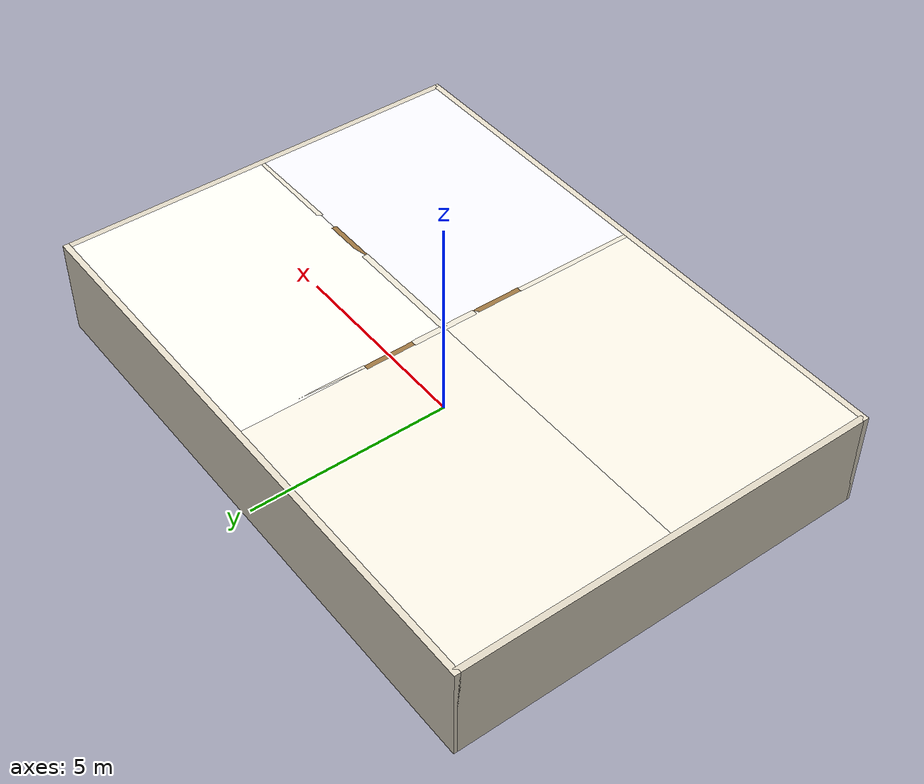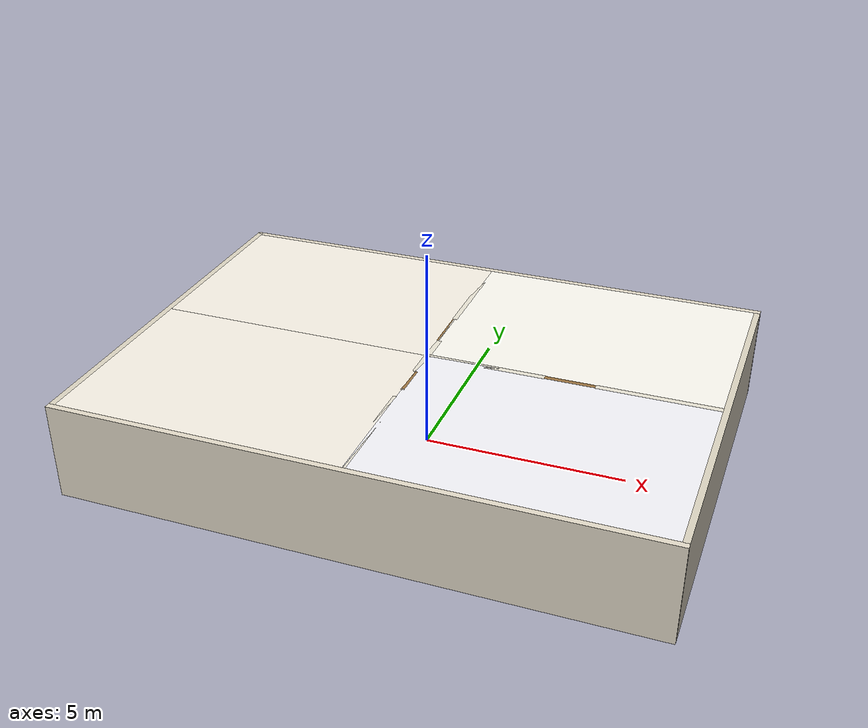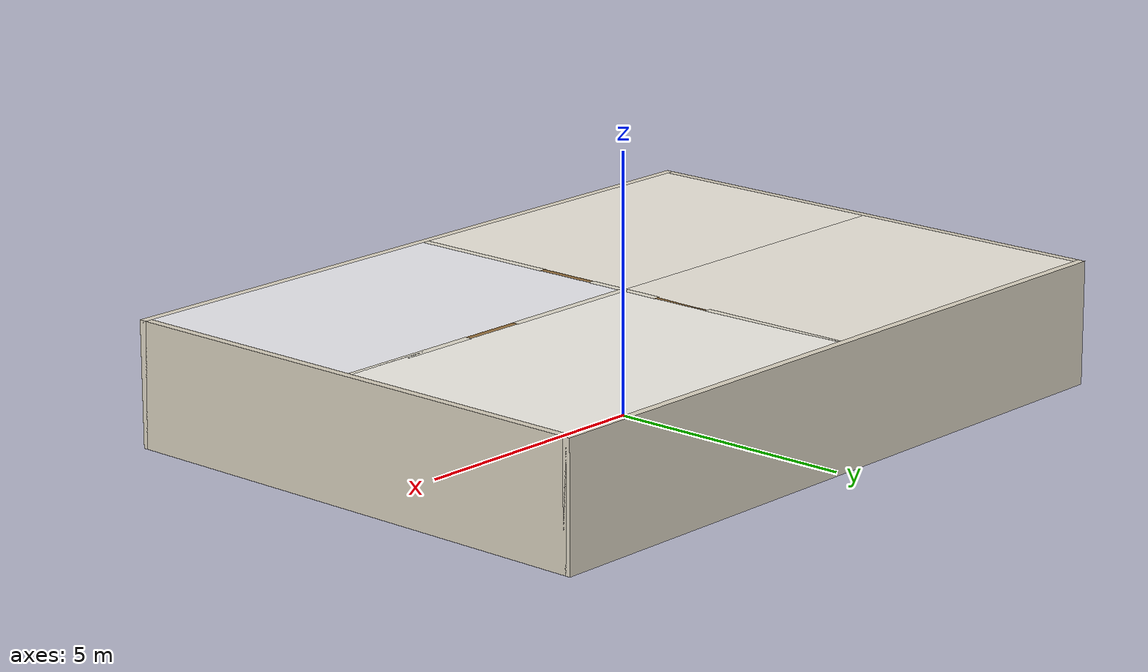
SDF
<?xml version="1.0" ?>
<sdf version="1.7">
  <world name="small_house">

    <!-- World plugins                                                      -->
    <plugin filename="libignition-gazebo-physics-system.so"
            name="ignition::gazebo::systems::Physics"/>
    <plugin filename="libignition-gazebo-user-commands-system.so"
            name="ignition::gazebo::systems::UserCommands"/>
    <plugin filename="libignition-gazebo-scene-broadcaster-system.so"
            name="ignition::gazebo::systems::SceneBroadcaster"/>
    <!-- Sensors plugin is required for camera rendering -->
    <plugin filename="libignition-gazebo-sensors-system.so"
            name="ignition::gazebo::systems::Sensors">
      <render_engine>ogre2</render_engine>
    </plugin>

    <!-- Physics                                                            -->
    <physics name="default_physics" default="0" type="ode">
      <max_step_size>0.004</max_step_size>
      <real_time_factor>1.0</real_time_factor>
      <real_time_update_rate>250</real_time_update_rate>
    </physics>

    <!-- Lighting                                                           -->

    <!-- Gentle global fill — no harsh shadows from above -->
    <light name="ambient_sun" type="directional">
      <cast_shadows>false</cast_shadows>
      <pose>0 0 10 0 0 0</pose>
      <diffuse>0.45 0.45 0.5 1</diffuse>
      <specular>0.1 0.1 0.1 1</specular>
      <direction>-0.3 0.1 -0.9</direction>
    </light>

    <!-- Living room ceiling light -->
    <light name="light_living" type="point">
      <pose>-3.5 2.5 2.2 0 0 0</pose>
      <diffuse>0.9 0.85 0.75 1</diffuse>
      <specular>0.3 0.3 0.2 1</specular>
      <attenuation>
        <range>12</range><constant>0.4</constant>
        <linear>0.08</linear><quadratic>0.03</quadratic>
      </attenuation>
      <cast_shadows>true</cast_shadows>
    </light>

    <!-- Bedroom ceiling light -->
    <light name="light_bedroom" type="point">
      <pose>-3.5 -2.5 2.2 0 0 0</pose>
      <diffuse>0.85 0.82 0.78 1</diffuse>
      <specular>0.2 0.2 0.2 1</specular>
      <attenuation>
        <range>12</range><constant>0.4</constant>
        <linear>0.08</linear><quadratic>0.03</quadratic>
      </attenuation>
      <cast_shadows>true</cast_shadows>
    </light>

    <!-- Kitchen ceiling light (warm white) -->
    <light name="light_kitchen" type="point">
      <pose>3.5 2.5 2.2 0 0 0</pose>
      <diffuse>1.0 0.95 0.85 1</diffuse>
      <specular>0.4 0.35 0.25 1</specular>
      <attenuation>
        <range>12</range><constant>0.35</constant>
        <linear>0.07</linear><quadratic>0.025</quadratic>
      </attenuation>
      <cast_shadows>true</cast_shadows>
    </light>

    <!-- Study ceiling light (cool white) -->
    <light name="light_study" type="point">
      <pose>3.5 -2.5 2.2 0 0 0</pose>
      <diffuse>0.85 0.88 1.0 1</diffuse>
      <specular>0.25 0.25 0.35 1</specular>
      <attenuation>
        <range>12</range><constant>0.4</constant>
        <linear>0.08</linear><quadratic>0.03</quadratic>
      </attenuation>
      <cast_shadows>true</cast_shadows>
    </light>

    <!-- Center hallway / doorway fill light -->
    <light name="light_hall" type="point">
      <pose>0 0 2.2 0 0 0</pose>
      <diffuse>0.7 0.7 0.7 1</diffuse>
      <specular>0.1 0.1 0.1 1</specular>
      <attenuation>
        <range>6</range><constant>0.5</constant>
        <linear>0.12</linear><quadratic>0.05</quadratic>
      </attenuation>
      <cast_shadows>false</cast_shadows>
    </light>

    <!-- FLOOR                                                              -->

    <!-- Living room floor — warm oak colour -->
    <model name="floor_living">
      <static>true</static>
      <pose>-3.5 2.5 0 0 0 0</pose>
      <link name="link">
        <collision name="col">
          <geometry><box><size>7.0 5.0 0.02</size></box></geometry>
          <surface><friction><ode><mu>0.8</mu><mu2>0.8</mu2></ode></friction></surface>
        </collision>
        <visual name="vis">
          <geometry><box><size>7.0 5.0 0.02</size></box></geometry>
          <material>
            <ambient>0.72 0.52 0.25 1</ambient>
            <diffuse>0.72 0.52 0.25 1</diffuse>
            <specular>0.15 0.1 0.05 1</specular>
          </material>
        </visual>
      </link>
    </model>

    <!-- Bedroom floor — darker hardwood -->
    <model name="floor_bedroom">
      <static>true</static>
      <pose>-3.5 -2.5 0 0 0 0</pose>
      <link name="link">
        <collision name="col">
          <geometry><box><size>7.0 5.0 0.02</size></box></geometry>
          <surface><friction><ode><mu>0.8</mu><mu2>0.8</mu2></ode></friction></surface>
        </collision>
        <visual name="vis">
          <geometry><box><size>7.0 5.0 0.02</size></box></geometry>
          <material>
            <ambient>0.52 0.32 0.12 1</ambient>
            <diffuse>0.52 0.32 0.12 1</diffuse>
            <specular>0.12 0.07 0.03 1</specular>
          </material>
        </visual>
      </link>
    </model>

    <!-- Kitchen floor — grey ceramic tile -->
    <model name="floor_kitchen">
      <static>true</static>
      <pose>3.5 2.5 0 0 0 0</pose>
      <link name="link">
        <collision name="col">
          <geometry><box><size>7.0 5.0 0.02</size></box></geometry>
          <surface><friction><ode><mu>0.9</mu><mu2>0.9</mu2></ode></friction></surface>
        </collision>
        <visual name="vis">
          <geometry><box><size>7.0 5.0 0.02</size></box></geometry>
          <material>
            <ambient>0.75 0.75 0.75 1</ambient>
            <diffuse>0.75 0.75 0.75 1</diffuse>
            <specular>0.4 0.4 0.4 1</specular>
          </material>
        </visual>
      </link>
    </model>

    <!-- Study floor — carpet, muted green -->
    <model name="floor_study">
      <static>true</static>
      <pose>3.5 -2.5 0 0 0 0</pose>
      <link name="link">
        <collision name="col">
          <geometry><box><size>7.0 5.0 0.02</size></box></geometry>
          <surface><friction><ode><mu>0.9</mu><mu2>0.9</mu2></ode></friction></surface>
        </collision>
        <visual name="vis">
          <geometry><box><size>7.0 5.0 0.02</size></box></geometry>
          <material>
            <ambient>0.35 0.45 0.32 1</ambient>
            <diffuse>0.35 0.45 0.32 1</diffuse>
            <specular>0.05 0.07 0.04 1</specular>
          </material>
        </visual>
      </link>
    </model>

    <!-- CEILINGS (create visual features for angled camera views)         -->

    <model name="ceiling_living">
      <static>true</static>
      <pose>-3.5 2.5 2.38 0 0 0</pose>
      <link name="link">
        <visual name="vis">
          <geometry><box><size>7.0 5.0 0.04</size></box></geometry>
          <material>
            <ambient>0.95 0.93 0.88 1</ambient>
            <diffuse>0.95 0.93 0.88 1</diffuse>
          </material>
        </visual>
      </link>
    </model>

    <model name="ceiling_bedroom">
      <static>true</static>
      <pose>-3.5 -2.5 2.38 0 0 0</pose>
      <link name="link">
        <visual name="vis">
          <geometry><box><size>7.0 5.0 0.04</size></box></geometry>
          <material>
            <ambient>0.95 0.93 0.88 1</ambient>
            <diffuse>0.95 0.93 0.88 1</diffuse>
          </material>
        </visual>
      </link>
    </model>

    <model name="ceiling_kitchen">
      <static>true</static>
      <pose>3.5 2.5 2.38 0 0 0</pose>
      <link name="link">
        <visual name="vis">
          <geometry><box><size>7.0 5.0 0.04</size></box></geometry>
          <material>
            <ambient>0.97 0.96 0.93 1</ambient>
            <diffuse>0.97 0.96 0.93 1</diffuse>
          </material>
        </visual>
      </link>
    </model>

    <model name="ceiling_study">
      <static>true</static>
      <pose>3.5 -2.5 2.38 0 0 0</pose>
      <link name="link">
        <visual name="vis">
          <geometry><box><size>7.0 5.0 0.04</size></box></geometry>
          <material>
            <ambient>0.94 0.94 0.96 1</ambient>
            <diffuse>0.94 0.94 0.96 1</diffuse>
          </material>
        </visual>
      </link>
    </model>

    <!-- PERIMETER WALLS                                                    -->
    <!-- All walls: height 2.4 m, thickness 0.15 m.                        -->
    <!-- Poses are at wall centre (z=1.2).                                 -->

    <!-- Outer north wall (y=+5): 14.3 m long to cover full width + corners -->
    <model name="wall_outer_north">
      <static>true</static>
      <pose>0 5.075 1.2 0 0 0</pose>
      <link name="link">
        <collision name="col">
          <geometry><box><size>14.3 0.15 2.4</size></box></geometry>
        </collision>
        <visual name="vis">
          <geometry><box><size>14.3 0.15 2.4</size></box></geometry>
          <material>
            <ambient>0.88 0.85 0.78 1</ambient>
            <diffuse>0.88 0.85 0.78 1</diffuse>
            <specular>0.08 0.08 0.06 1</specular>
          </material>
        </visual>
      </link>
    </model>

    <!-- Outer south wall (y=-5) -->
    <model name="wall_outer_south">
      <static>true</static>
      <pose>0 -5.075 1.2 0 0 0</pose>
      <link name="link">
        <collision name="col">
          <geometry><box><size>14.3 0.15 2.4</size></box></geometry>
        </collision>
        <visual name="vis">
          <geometry><box><size>14.3 0.15 2.4</size></box></geometry>
          <material>
            <ambient>0.88 0.85 0.78 1</ambient>
            <diffuse>0.88 0.85 0.78 1</diffuse>
            <specular>0.08 0.08 0.06 1</specular>
          </material>
        </visual>
      </link>
    </model>

    <!-- Outer west wall (x=-7): 10.15 m long (excludes corner overlaps) -->
    <model name="wall_outer_west">
      <static>true</static>
      <pose>-7.075 0 1.2 0 0 0</pose>
      <link name="link">
        <collision name="col">
          <geometry><box><size>0.15 10.15 2.4</size></box></geometry>
        </collision>
        <visual name="vis">
          <geometry><box><size>0.15 10.15 2.4</size></box></geometry>
          <material>
            <ambient>0.85 0.82 0.75 1</ambient>
            <diffuse>0.85 0.82 0.75 1</diffuse>
            <specular>0.07 0.07 0.05 1</specular>
          </material>
        </visual>
      </link>
    </model>

    <!-- Outer east wall (x=+7) -->
    <model name="wall_outer_east">
      <static>true</static>
      <pose>7.075 0 1.2 0 0 0</pose>
      <link name="link">
        <collision name="col">
          <geometry><box><size>0.15 10.15 2.4</size></box></geometry>
        </collision>
        <visual name="vis">
          <geometry><box><size>0.15 10.15 2.4</size></box></geometry>
          <material>
            <ambient>0.85 0.82 0.75 1</ambient>
            <diffuse>0.85 0.82 0.75 1</diffuse>
            <specular>0.07 0.07 0.05 1</specular>
          </material>
        </visual>
      </link>
    </model>

    <!-- INTERIOR DIVIDING WALL — vertical at x=0                          -->
    <!-- Two doorways of 1.2 m:                                            -->
    <!--   North door: y = 0.8 to 2.0  (centre y=1.4)                     -->
    <!--   South door: y = -2.0 to -0.8 (centre y=-1.4)                   -->
    <!-- Three wall segments remain:                                        -->
    <!--   North: y=2.0 → 5.0   length=3.0   centre=(0, 3.5)              -->
    <!--   Mid  : y=-0.8 → 0.8  length=1.6   centre=(0, 0.0)              -->
    <!--   South: y=-5.0 → -2.0 length=3.0   centre=(0, -3.5)             -->

    <!-- Divider north segment (living ↔ kitchen, above north door) -->
    <model name="wall_div_north">
      <static>true</static>
      <pose>0 3.5 1.2 0 0 0</pose>
      <link name="link">
        <collision name="col">
          <geometry><box><size>0.15 3.0 2.4</size></box></geometry>
        </collision>
        <visual name="vis">
          <geometry><box><size>0.15 3.0 2.4</size></box></geometry>
          <material>
            <ambient>0.90 0.88 0.82 1</ambient>
            <diffuse>0.90 0.88 0.82 1</diffuse>
            <specular>0.07 0.07 0.05 1</specular>
          </material>
        </visual>
      </link>
    </model>

    <!-- Divider middle segment (between north and south doors) -->
    <model name="wall_div_mid">
      <static>true</static>
      <pose>0 0 1.2 0 0 0</pose>
      <link name="link">
        <collision name="col">
          <geometry><box><size>0.15 1.6 2.4</size></box></geometry>
        </collision>
        <visual name="vis">
          <geometry><box><size>0.15 1.6 2.4</size></box></geometry>
          <material>
            <ambient>0.90 0.88 0.82 1</ambient>
            <diffuse>0.90 0.88 0.82 1</diffuse>
            <specular>0.07 0.07 0.05 1</specular>
          </material>
        </visual>
      </link>
    </model>

    <!-- Divider south segment (bedroom ↔ study, below south door) -->
    <model name="wall_div_south">
      <static>true</static>
      <pose>0 -3.5 1.2 0 0 0</pose>
      <link name="link">
        <collision name="col">
          <geometry><box><size>0.15 3.0 2.4</size></box></geometry>
        </collision>
        <visual name="vis">
          <geometry><box><size>0.15 3.0 2.4</size></box></geometry>
          <material>
            <ambient>0.90 0.88 0.82 1</ambient>
            <diffuse>0.90 0.88 0.82 1</diffuse>
            <specular>0.07 0.07 0.05 1</specular>
          </material>
        </visual>
      </link>
    </model>

    <!-- Door frame trim — north door (visual only, thin box around opening) -->
    <model name="door_trim_N_top">
      <static>true</static>
      <pose>0 1.4 2.35 0 0 0</pose>
      <link name="link">
        <visual name="vis">
          <geometry><box><size>0.12 1.2 0.1</size></box></geometry>
          <material><ambient>0.6 0.45 0.25 1</ambient><diffuse>0.6 0.45 0.25 1</diffuse></material>
        </visual>
      </link>
    </model>

    <!-- Door frame trim — south door -->
    <model name="door_trim_S_top">
      <static>true</static>
      <pose>0 -1.4 2.35 0 0 0</pose>
      <link name="link">
        <visual name="vis">
          <geometry><box><size>0.12 1.2 0.1</size></box></geometry>
          <material><ambient>0.6 0.45 0.25 1</ambient><diffuse>0.6 0.45 0.25 1</diffuse></material>
        </visual>
      </link>
    </model>

    <!-- MID-WALL in right section — horizontal at y=0, x=0→7             -->
    <!-- Doorway: x=2.9 → 4.1  (1.2 m wide, centre x=3.5)                -->
    <!-- Two segments:                                                      -->
    <!--   West: x=0 → 2.9  length=2.9  centre x=1.45                    -->
    <!--   East: x=4.1 → 7  length=2.9  centre x=5.55                    -->

    <model name="wall_mid_west">
      <static>true</static>
      <pose>1.45 0 1.2 0 0 0</pose>
      <link name="link">
        <collision name="col">
          <geometry><box><size>2.9 0.15 2.4</size></box></geometry>
        </collision>
        <visual name="vis">
          <geometry><box><size>2.9 0.15 2.4</size></box></geometry>
          <material>
            <ambient>0.90 0.88 0.82 1</ambient>
            <diffuse>0.90 0.88 0.82 1</diffuse>
            <specular>0.07 0.07 0.05 1</specular>
          </material>
        </visual>
      </link>
    </model>

    <model name="wall_mid_east">
      <static>true</static>
      <pose>5.55 0 1.2 0 0 0</pose>
      <link name="link">
        <collision name="col">
          <geometry><box><size>2.9 0.15 2.4</size></box></geometry>
        </collision>
        <visual name="vis">
          <geometry><box><size>2.9 0.15 2.4</size></box></geometry>
          <material>
            <ambient>0.90 0.88 0.82 1</ambient>
            <diffuse>0.90 0.88 0.82 1</diffuse>
            <specular>0.07 0.07 0.05 1</specular>
          </material>
        </visual>
      </link>
    </model>

    <!-- Door frame trim — kitchen/study passage -->
    <model name="door_trim_KS_top">
      <static>true</static>
      <pose>3.5 0 2.35 0 0 0</pose>
      <link name="link">
        <visual name="vis">
          <geometry><box><size>1.2 0.12 0.1</size></box></geometry>
          <material><ambient>0.6 0.45 0.25 1</ambient><diffuse>0.6 0.45 0.25 1</diffuse></material>
        </visual>
      </link>
    </model>

    <!-- LIVING ROOM FURNISHINGS  (x:-7→0, y:0→5)                         -->

    <!-- Large sofa against north wall — deep teal -->
    <model name="sofa">
      <static>true</static>
      <pose>-5 4.4 0.45 0 0 0</pose>
      <link name="link">
        <collision name="col"><geometry><box><size>2.4 0.8 0.85</size></box></geometry></collision>
        <visual name="vis">
          <geometry><box><size>2.4 0.8 0.85</size></box></geometry>
          <material>
            <ambient>0.12 0.38 0.42 1</ambient>
            <diffuse>0.12 0.38 0.42 1</diffuse>
            <specular>0.05 0.12 0.14 1</specular>
          </material>
        </visual>
      </link>
    </model>

    <!-- Sofa armrest left -->
    <model name="sofa_arm_l">
      <static>true</static>
      <pose>-6.3 4.35 0.55 0 0 0</pose>
      <link name="link">
        <collision name="col"><geometry><box><size>0.15 0.7 1.0</size></box></geometry></collision>
        <visual name="vis">
          <geometry><box><size>0.15 0.7 1.0</size></box></geometry>
          <material><ambient>0.10 0.32 0.36 1</ambient><diffuse>0.10 0.32 0.36 1</diffuse></material>
        </visual>
      </link>
    </model>

    <!-- Sofa armrest right -->
    <model name="sofa_arm_r">
      <static>true</static>
      <pose>-3.75 4.35 0.55 0 0 0</pose>
      <link name="link">
        <collision name="col"><geometry><box><size>0.15 0.7 1.0</size></box></geometry></collision>
        <visual name="vis">
          <geometry><box><size>0.15 0.7 1.0</size></box></geometry>
          <material><ambient>0.10 0.32 0.36 1</ambient><diffuse>0.10 0.32 0.36 1</diffuse></material>
        </visual>
      </link>
    </model>

    <!-- Coffee table in front of sofa — glass-top (light grey) -->
    <model name="coffee_table">
      <static>true</static>
      <pose>-5 3.2 0.22 0 0 0</pose>
      <link name="link">
        <collision name="col"><geometry><box><size>1.2 0.6 0.45</size></box></geometry></collision>
        <visual name="vis">
          <geometry><box><size>1.2 0.6 0.45</size></box></geometry>
          <material>
            <ambient>0.70 0.70 0.72 1</ambient>
            <diffuse>0.70 0.70 0.72 1</diffuse>
            <specular>0.6 0.6 0.65 1</specular>
          </material>
        </visual>
      </link>
    </model>

    <!-- TV unit against west wall — dark grey cabinet -->
    <model name="tv_cabinet">
      <static>true</static>
      <pose>-6.6 1.5 0.25 0 0 0</pose>
      <link name="link">
        <collision name="col"><geometry><box><size>0.45 1.6 0.5</size></box></geometry></collision>
        <visual name="vis">
          <geometry><box><size>0.45 1.6 0.5</size></box></geometry>
          <material>
            <ambient>0.18 0.16 0.16 1</ambient>
            <diffuse>0.18 0.16 0.16 1</diffuse>
            <specular>0.25 0.22 0.22 1</specular>
          </material>
        </visual>
      </link>
    </model>

    <!-- TV (flat panel) mounted on cabinet — black screen -->
    <model name="tv_screen">
      <static>true</static>
      <pose>-6.4 1.5 0.85 0 0 0</pose>
      <link name="link">
        <collision name="col"><geometry><box><size>0.08 1.4 0.8</size></box></geometry></collision>
        <visual name="vis">
          <geometry><box><size>0.08 1.4 0.8</size></box></geometry>
          <material>
            <ambient>0.05 0.05 0.08 1</ambient>
            <diffuse>0.05 0.05 0.08 1</diffuse>
            <specular>0.6 0.6 0.8 1</specular>
          </material>
        </visual>
      </link>
    </model>

    <!-- Bookshelf against west wall — tall dark wood -->
    <model name="bookshelf_living">
      <static>true</static>
      <pose>-6.6 3.5 0.95 0 0 0</pose>
      <link name="link">
        <collision name="col"><geometry><box><size>0.4 1.2 1.9</size></box></geometry></collision>
        <visual name="vis">
          <geometry><box><size>0.4 1.2 1.9</size></box></geometry>
          <material>
            <ambient>0.32 0.18 0.06 1</ambient>
            <diffuse>0.32 0.18 0.06 1</diffuse>
            <specular>0.15 0.08 0.03 1</specular>
          </material>
        </visual>
      </link>
    </model>

    <!-- Books on shelf — colourful spines (thin slabs) -->
    <model name="books_row1">
      <static>true</static>
      <pose>-6.42 3.55 0.4 0 0 0</pose>
      <link name="link">
        <visual name="vis">
          <geometry><box><size>0.06 0.9 0.22</size></box></geometry>
          <material><ambient>0.85 0.15 0.1 1</ambient><diffuse>0.85 0.15 0.1 1</diffuse></material>
        </visual>
      </link>
    </model>
    <model name="books_row2">
      <static>true</static>
      <pose>-6.42 3.3 0.75 0 0 0</pose>
      <link name="link">
        <visual name="vis">
          <geometry><box><size>0.06 0.55 0.20</size></box></geometry>
          <material><ambient>0.1 0.35 0.75 1</ambient><diffuse>0.1 0.35 0.75 1</diffuse></material>
        </visual>
      </link>
    </model>
    <model name="books_row3">
      <static>true</static>
      <pose>-6.42 3.6 1.1 0 0 0</pose>
      <link name="link">
        <visual name="vis">
          <geometry><box><size>0.06 0.7 0.19</size></box></geometry>
          <material><ambient>0.15 0.6 0.2 1</ambient><diffuse>0.15 0.6 0.2 1</diffuse></material>
        </visual>
      </link>
    </model>

    <!-- Living room area rug — rich burgundy -->
    <model name="rug_living">
      <static>true</static>
      <pose>-4.5 2.5 0.015 0 0 0</pose>
      <link name="link">
        <visual name="vis">
          <geometry><box><size>3.0 2.2 0.03</size></box></geometry>
          <material>
            <ambient>0.52 0.08 0.12 1</ambient>
            <diffuse>0.52 0.08 0.12 1</diffuse>
            <specular>0.05 0.01 0.01 1</specular>
          </material>
        </visual>
      </link>
    </model>

    <!-- Rug pattern — lighter border strip around burgundy rug -->
    <model name="rug_border">
      <static>true</static>
      <pose>-4.5 2.5 0.018 0 0 0</pose>
      <link name="link">
        <visual name="vis">
          <geometry><box><size>2.7 1.9 0.005</size></box></geometry>
          <material>
            <ambient>0.75 0.55 0.28 1</ambient>
            <diffuse>0.75 0.55 0.28 1</diffuse>
          </material>
        </visual>
      </link>
    </model>

    <!-- Side lamp next to sofa — floor lamp: pole + shade -->
    <model name="floor_lamp_living">
      <static>true</static>
      <pose>-3.6 4.1 0.85 0 0 0</pose>
      <link name="link">
        <collision name="col"><geometry><cylinder><radius>0.04</radius><length>1.7</length></cylinder></geometry></collision>
        <visual name="vis">
          <geometry><cylinder><radius>0.04</radius><length>1.7</length></cylinder></geometry>
          <material><ambient>0.7 0.65 0.55 1</ambient><diffuse>0.7 0.65 0.55 1</diffuse></material>
        </visual>
      </link>
    </model>
    <model name="lamp_shade_living">
      <static>true</static>
      <pose>-3.6 4.1 1.77 0 0 0</pose>
      <link name="link">
        <visual name="vis">
          <geometry><cylinder><radius>0.18</radius><length>0.25</length></cylinder></geometry>
          <material><ambient>0.95 0.90 0.72 1</ambient><diffuse>0.95 0.90 0.72 1</diffuse></material>
        </visual>
      </link>
    </model>

    <!-- Decorative plant corner — cylinder trunk + sphere leaves -->
    <model name="plant_pot_living">
      <static>true</static>
      <pose>-1.3 4.3 0.15 0 0 0</pose>
      <link name="link">
        <collision name="col"><geometry><cylinder><radius>0.15</radius><length>0.30</length></cylinder></geometry></collision>
        <visual name="vis">
          <geometry><cylinder><radius>0.15</radius><length>0.30</length></cylinder></geometry>
          <material><ambient>0.6 0.35 0.15 1</ambient><diffuse>0.6 0.35 0.15 1</diffuse></material>
        </visual>
      </link>
    </model>
    <model name="plant_foliage_living">
      <static>true</static>
      <pose>-1.3 4.3 0.65 0 0 0</pose>
      <link name="link">
        <collision name="col"><geometry><sphere><radius>0.28</radius></sphere></geometry></collision>
        <visual name="vis">
          <geometry><sphere><radius>0.28</radius></sphere></geometry>
          <material><ambient>0.15 0.52 0.12 1</ambient><diffuse>0.15 0.52 0.12 1</diffuse></material>
        </visual>
      </link>
    </model>

    <!-- ── Wall art on north (living room north wall at y=5) ── -->
    <!-- Picture frame 1: large landscape -->
    <model name="art_living_1">
      <static>true</static>
      <pose>-5.5 4.93 1.5 0 0 0</pose>
      <link name="link">
        <visual name="vis">
          <geometry><box><size>0.7 0.06 0.5</size></box></geometry>
          <material><ambient>0.15 0.25 0.62 1</ambient><diffuse>0.15 0.25 0.62 1</diffuse></material>
        </visual>
      </link>
    </model>
    <!-- Frame border -->
    <model name="art_living_1_frame">
      <static>true</static>
      <pose>-5.5 4.90 1.5 0 0 0</pose>
      <link name="link">
        <visual name="vis">
          <geometry><box><size>0.76 0.04 0.56</size></box></geometry>
          <material><ambient>0.62 0.48 0.18 1</ambient><diffuse>0.62 0.48 0.18 1</diffuse></material>
        </visual>
      </link>
    </model>

    <!-- Picture frame 2: portrait -->
    <model name="art_living_2">
      <static>true</static>
      <pose>-3.5 4.93 1.5 0 0 0</pose>
      <link name="link">
        <visual name="vis">
          <geometry><box><size>0.38 0.06 0.5</size></box></geometry>
          <material><ambient>0.72 0.22 0.12 1</ambient><diffuse>0.72 0.22 0.12 1</diffuse></material>
        </visual>
      </link>
    </model>
    <model name="art_living_2_frame">
      <static>true</static>
      <pose>-3.5 4.90 1.5 0 0 0</pose>
      <link name="link">
        <visual name="vis">
          <geometry><box><size>0.44 0.04 0.56</size></box></geometry>
          <material><ambient>0.62 0.48 0.18 1</ambient><diffuse>0.62 0.48 0.18 1</diffuse></material>
        </visual>
      </link>
    </model>

    <!-- Picture frame 3: small square -->
    <model name="art_living_3">
      <static>true</static>
      <pose>-1.8 4.93 1.65 0 0 0</pose>
      <link name="link">
        <visual name="vis">
          <geometry><box><size>0.32 0.06 0.32</size></box></geometry>
          <material><ambient>0.12 0.58 0.35 1</ambient><diffuse>0.12 0.58 0.35 1</diffuse></material>
        </visual>
      </link>
    </model>
    <model name="art_living_3_frame">
      <static>true</static>
      <pose>-1.8 4.90 1.65 0 0 0</pose>
      <link name="link">
        <visual name="vis">
          <geometry><box><size>0.38 0.04 0.38</size></box></geometry>
          <material><ambient>0.5 0.5 0.5 1</ambient><diffuse>0.5 0.5 0.5 1</diffuse></material>
        </visual>
      </link>
    </model>

    <!-- Wall art on west wall (x=-7) of living room -->
    <model name="art_west_1">
      <static>true</static>
      <pose>-6.93 2.5 1.5 0 0 0</pose>
      <link name="link">
        <visual name="vis">
          <geometry><box><size>0.06 0.55 0.42</size></box></geometry>
          <material><ambient>0.8 0.65 0.08 1</ambient><diffuse>0.8 0.65 0.08 1</diffuse></material>
        </visual>
      </link>
    </model>
    <model name="art_west_1_frame">
      <static>true</static>
      <pose>-6.90 2.5 1.5 0 0 0</pose>
      <link name="link">
        <visual name="vis">
          <geometry><box><size>0.04 0.61 0.48</size></box></geometry>
          <material><ambient>0.22 0.16 0.06 1</ambient><diffuse>0.22 0.16 0.06 1</diffuse></material>
        </visual>
      </link>
    </model>

    <!-- BEDROOM FURNISHINGS  (x:-7→0, y:-5→0)                            -->

    <!-- Bed frame — cream/white -->
    <model name="bed_frame">
      <static>true</static>
      <pose>-4.5 -3.2 0.25 0 0 0</pose>
      <link name="link">
        <collision name="col"><geometry><box><size>2.0 2.2 0.5</size></box></geometry></collision>
        <visual name="vis">
          <geometry><box><size>2.0 2.2 0.5</size></box></geometry>
          <material>
            <ambient>0.88 0.88 0.82 1</ambient>
            <diffuse>0.88 0.88 0.82 1</diffuse>
            <specular>0.12 0.12 0.1 1</specular>
          </material>
        </visual>
      </link>
    </model>

    <!-- Headboard — dark wood panel -->
    <model name="bed_headboard">
      <static>true</static>
      <pose>-4.5 -2.05 0.85 0 0 0</pose>
      <link name="link">
        <collision name="col"><geometry><box><size>2.0 0.12 1.2</size></box></geometry></collision>
        <visual name="vis">
          <geometry><box><size>2.0 0.12 1.2</size></box></geometry>
          <material>
            <ambient>0.28 0.16 0.06 1</ambient>
            <diffuse>0.28 0.16 0.06 1</diffuse>
            <specular>0.18 0.10 0.04 1</specular>
          </material>
        </visual>
      </link>
    </model>

    <!-- Duvet / comforter — blue -->
    <model name="bed_duvet">
      <static>true</static>
      <pose>-4.5 -3.2 0.53 0 0 0</pose>
      <link name="link">
        <visual name="vis">
          <geometry><box><size>1.9 2.1 0.12</size></box></geometry>
          <material>
            <ambient>0.22 0.40 0.75 1</ambient>
            <diffuse>0.22 0.40 0.75 1</diffuse>
          </material>
        </visual>
      </link>
    </model>

    <!-- Pillow -->
    <model name="bed_pillow">
      <static>true</static>
      <pose>-4.5 -2.2 0.62 0 0 0</pose>
      <link name="link">
        <visual name="vis">
          <geometry><box><size>1.5 0.5 0.12</size></box></geometry>
          <material><ambient>0.95 0.92 0.88 1</ambient><diffuse>0.95 0.92 0.88 1</diffuse></material>
        </visual>
      </link>
    </model>

    <!-- Left nightstand -->
    <model name="nightstand_l">
      <static>true</static>
      <pose>-5.7 -2.3 0.28 0 0 0</pose>
      <link name="link">
        <collision name="col"><geometry><box><size>0.5 0.5 0.55</size></box></geometry></collision>
        <visual name="vis">
          <geometry><box><size>0.5 0.5 0.55</size></box></geometry>
          <material>
            <ambient>0.40 0.25 0.10 1</ambient>
            <diffuse>0.40 0.25 0.10 1</diffuse>
            <specular>0.12 0.07 0.03 1</specular>
          </material>
        </visual>
      </link>
    </model>

    <!-- Right nightstand -->
    <model name="nightstand_r">
      <static>true</static>
      <pose>-3.2 -2.3 0.28 0 0 0</pose>
      <link name="link">
        <collision name="col"><geometry><box><size>0.5 0.5 0.55</size></box></geometry></collision>
        <visual name="vis">
          <geometry><box><size>0.5 0.5 0.55</size></box></geometry>
          <material>
            <ambient>0.40 0.25 0.10 1</ambient>
            <diffuse>0.40 0.25 0.10 1</diffuse>
            <specular>0.12 0.07 0.03 1</specular>
          </material>
        </visual>
      </link>
    </model>

    <!-- Table lamp on left nightstand -->
    <model name="lamp_nightstand">
      <static>true</static>
      <pose>-5.7 -2.3 0.72 0 0 0</pose>
      <link name="link">
        <visual name="vis">
          <geometry><cylinder><radius>0.08</radius><length>0.28</length></cylinder></geometry>
          <material><ambient>0.92 0.88 0.70 1</ambient><diffuse>0.92 0.88 0.70 1</diffuse></material>
        </visual>
      </link>
    </model>

    <!-- Dresser against south wall -->
    <model name="dresser">
      <static>true</static>
      <pose>-4.5 -4.6 0.5 0 0 0</pose>
      <link name="link">
        <collision name="col"><geometry><box><size>1.2 0.55 1.0</size></box></geometry></collision>
        <visual name="vis">
          <geometry><box><size>1.2 0.55 1.0</size></box></geometry>
          <material>
            <ambient>0.45 0.30 0.12 1</ambient>
            <diffuse>0.45 0.30 0.12 1</diffuse>
            <specular>0.15 0.10 0.04 1</specular>
          </material>
        </visual>
      </link>
    </model>

    <!-- Dresser mirror (thin tall box above dresser) -->
    <model name="dresser_mirror">
      <static>true</static>
      <pose>-4.5 -4.45 1.6 0 0 0</pose>
      <link name="link">
        <visual name="vis">
          <geometry><box><size>0.8 0.05 0.8</size></box></geometry>
          <material>
            <ambient>0.75 0.82 0.88 1</ambient>
            <diffuse>0.75 0.82 0.88 1</diffuse>
            <specular>0.85 0.88 0.92 1</specular>
          </material>
        </visual>
      </link>
    </model>

    <!-- Bedroom wardrobe against west wall — tall dark grey box -->
    <model name="wardrobe">
      <static>true</static>
      <pose>-6.6 -1.5 1.1 0 0 0</pose>
      <link name="link">
        <collision name="col"><geometry><box><size>0.6 1.8 2.2</size></box></geometry></collision>
        <visual name="vis">
          <geometry><box><size>0.6 1.8 2.2</size></box></geometry>
          <material>
            <ambient>0.22 0.22 0.24 1</ambient>
            <diffuse>0.22 0.22 0.24 1</diffuse>
            <specular>0.3 0.3 0.32 1</specular>
          </material>
        </visual>
      </link>
    </model>

    <!-- Wardrobe door handles (thin silver cylinders) -->
    <model name="wardrobe_handle_1">
      <static>true</static>
      <pose>-6.28 -0.9 1.1 0 1.5708 0</pose>
      <link name="link">
        <visual name="vis">
          <geometry><cylinder><radius>0.02</radius><length>0.15</length></cylinder></geometry>
          <material><ambient>0.75 0.75 0.78 1</ambient><diffuse>0.75 0.75 0.78 1</diffuse><specular>0.9 0.9 0.9 1</specular></material>
        </visual>
      </link>
    </model>
    <model name="wardrobe_handle_2">
      <static>true</static>
      <pose>-6.28 -2.1 1.1 0 1.5708 0</pose>
      <link name="link">
        <visual name="vis">
          <geometry><cylinder><radius>0.02</radius><length>0.15</length></cylinder></geometry>
          <material><ambient>0.75 0.75 0.78 1</ambient><diffuse>0.75 0.75 0.78 1</diffuse><specular>0.9 0.9 0.9 1</specular></material>
        </visual>
      </link>
    </model>

    <!-- Bedroom wall art — calming landscape on west wall -->
    <model name="art_bedroom_w">
      <static>true</static>
      <pose>-6.93 -3.5 1.5 0 0 0</pose>
      <link name="link">
        <visual name="vis">
          <geometry><box><size>0.06 0.65 0.45</size></box></geometry>
          <material><ambient>0.35 0.60 0.72 1</ambient><diffuse>0.35 0.60 0.72 1</diffuse></material>
        </visual>
      </link>
    </model>
    <model name="art_bedroom_w_frame">
      <static>true</static>
      <pose>-6.90 -3.5 1.5 0 0 0</pose>
      <link name="link">
        <visual name="vis">
          <geometry><box><size>0.04 0.71 0.51</size></box></geometry>
          <material><ambient>0.55 0.42 0.18 1</ambient><diffuse>0.55 0.42 0.18 1</diffuse></material>
        </visual>
      </link>
    </model>

    <!-- Bedroom plant — taller -->
    <model name="plant_pot_bedroom">
      <static>true</static>
      <pose>-1.2 -0.5 0.2 0 0 0</pose>
      <link name="link">
        <collision name="col"><geometry><cylinder><radius>0.14</radius><length>0.38</length></cylinder></geometry></collision>
        <visual name="vis">
          <geometry><cylinder><radius>0.14</radius><length>0.38</length></cylinder></geometry>
          <material><ambient>0.55 0.30 0.12 1</ambient><diffuse>0.55 0.30 0.12 1</diffuse></material>
        </visual>
      </link>
    </model>
    <model name="plant_foliage_bedroom">
      <static>true</static>
      <pose>-1.2 -0.5 0.60 0 0 0</pose>
      <link name="link">
        <collision name="col"><geometry><sphere><radius>0.22</radius></sphere></geometry></collision>
        <visual name="vis">
          <geometry><sphere><radius>0.22</radius></sphere></geometry>
          <material><ambient>0.18 0.55 0.14 1</ambient><diffuse>0.18 0.55 0.14 1</diffuse></material>
        </visual>
      </link>
    </model>

    <!-- KITCHEN FURNISHINGS  (x:0→7, y:0→5)                              -->

    <!-- North counter unit (runs along north wall) -->
    <model name="counter_north">
      <static>true</static>
      <pose>3.5 4.65 0.45 0 0 0</pose>
      <link name="link">
        <collision name="col"><geometry><box><size>6.7 0.65 0.9</size></box></geometry></collision>
        <visual name="vis">
          <geometry><box><size>6.7 0.65 0.9</size></box></geometry>
          <material>
            <ambient>0.82 0.82 0.82 1</ambient>
            <diffuse>0.82 0.82 0.82 1</diffuse>
            <specular>0.35 0.35 0.35 1</specular>
          </material>
        </visual>
      </link>
    </model>

    <!-- East counter unit (runs along east wall) -->
    <model name="counter_east">
      <static>true</static>
      <pose>6.65 2.75 0.45 0 0 0</pose>
      <link name="link">
        <collision name="col"><geometry><box><size>0.65 4.45 0.9</size></box></geometry></collision>
        <visual name="vis">
          <geometry><box><size>0.65 4.45 0.9</size></box></geometry>
          <material>
            <ambient>0.82 0.82 0.82 1</ambient>
            <diffuse>0.82 0.82 0.82 1</diffuse>
            <specular>0.35 0.35 0.35 1</specular>
          </material>
        </visual>
      </link>
    </model>

    <!-- Counter top surface — slightly different shade for contrast -->
    <model name="counter_top_north">
      <static>true</static>
      <pose>3.5 4.65 0.91 0 0 0</pose>
      <link name="link">
        <visual name="vis">
          <geometry><box><size>6.7 0.65 0.05</size></box></geometry>
          <material>
            <ambient>0.22 0.22 0.24 1</ambient>
            <diffuse>0.22 0.22 0.24 1</diffuse>
            <specular>0.6 0.6 0.65 1</specular>
          </material>
        </visual>
      </link>
    </model>

    <!-- Refrigerator (NE corner) -->
    <model name="refrigerator">
      <static>true</static>
      <pose>6.6 4.55 0.95 0 0 0</pose>
      <link name="link">
        <collision name="col"><geometry><box><size>0.7 0.8 1.9</size></box></geometry></collision>
        <visual name="vis">
          <geometry><box><size>0.7 0.8 1.9</size></box></geometry>
          <material>
            <ambient>0.88 0.88 0.88 1</ambient>
            <diffuse>0.88 0.88 0.88 1</diffuse>
            <specular>0.55 0.55 0.55 1</specular>
          </material>
        </visual>
      </link>
    </model>

    <!-- Fridge handle -->
    <model name="fridge_handle">
      <static>true</static>
      <pose>6.22 4.3 1.1 0 0 0</pose>
      <link name="link">
        <visual name="vis">
          <geometry><cylinder><radius>0.02</radius><length>0.4</length></cylinder></geometry>
          <material><ambient>0.65 0.65 0.68 1</ambient><diffuse>0.65 0.65 0.68 1</diffuse><specular>0.9 0.9 0.9 1</specular></material>
        </visual>
      </link>
    </model>

    <!-- Microwave on north counter -->
    <model name="microwave">
      <static>true</static>
      <pose>1.5 4.42 1.1 0 0 0</pose>
      <link name="link">
        <collision name="col"><geometry><box><size>0.5 0.38 0.32</size></box></geometry></collision>
        <visual name="vis">
          <geometry><box><size>0.5 0.38 0.32</size></box></geometry>
          <material>
            <ambient>0.20 0.20 0.20 1</ambient>
            <diffuse>0.20 0.20 0.20 1</diffuse>
            <specular>0.4 0.4 0.4 1</specular>
          </material>
        </visual>
      </link>
    </model>

    <!-- Kitchen dining table -->
    <model name="kitchen_table">
      <static>true</static>
      <pose>2.5 2.0 0.375 0 0 0</pose>
      <link name="link">
        <collision name="col"><geometry><box><size>1.4 0.9 0.75</size></box></geometry></collision>
        <visual name="vis">
          <geometry><box><size>1.4 0.9 0.75</size></box></geometry>
          <material>
            <ambient>0.65 0.45 0.22 1</ambient>
            <diffuse>0.65 0.45 0.22 1</diffuse>
            <specular>0.2 0.14 0.07 1</specular>
          </material>
        </visual>
      </link>
    </model>

    <!-- Kitchen chairs (4 around table) -->
    <model name="kchair_1">
      <static>true</static>
      <pose>1.7 2.7 0.45 0 0 0</pose>
      <link name="link">
        <collision name="col"><geometry><box><size>0.45 0.45 0.85</size></box></geometry></collision>
        <visual name="vis">
          <geometry><box><size>0.45 0.45 0.85</size></box></geometry>
          <material><ambient>0.55 0.35 0.15 1</ambient><diffuse>0.55 0.35 0.15 1</diffuse></material>
        </visual>
      </link>
    </model>
    <model name="kchair_2">
      <static>true</static>
      <pose>3.3 2.7 0.45 0 0 0</pose>
      <link name="link">
        <collision name="col"><geometry><box><size>0.45 0.45 0.85</size></box></geometry></collision>
        <visual name="vis">
          <geometry><box><size>0.45 0.45 0.85</size></box></geometry>
          <material><ambient>0.55 0.35 0.15 1</ambient><diffuse>0.55 0.35 0.15 1</diffuse></material>
        </visual>
      </link>
    </model>
    <model name="kchair_3">
      <static>true</static>
      <pose>1.7 1.3 0.45 0 0 0</pose>
      <link name="link">
        <collision name="col"><geometry><box><size>0.45 0.45 0.85</size></box></geometry></collision>
        <visual name="vis">
          <geometry><box><size>0.45 0.45 0.85</size></box></geometry>
          <material><ambient>0.55 0.35 0.15 1</ambient><diffuse>0.55 0.35 0.15 1</diffuse></material>
        </visual>
      </link>
    </model>
    <model name="kchair_4">
      <static>true</static>
      <pose>3.3 1.3 0.45 0 0 0</pose>
      <link name="link">
        <collision name="col"><geometry><box><size>0.45 0.45 0.85</size></box></geometry></collision>
        <visual name="vis">
          <geometry><box><size>0.45 0.45 0.85</size></box></geometry>
          <material><ambient>0.55 0.35 0.15 1</ambient><diffuse>0.55 0.35 0.15 1</diffuse></material>
        </visual>
      </link>
    </model>

    <!-- Kitchen wall art / decorative tiles (north wall of kitchen) -->
    <model name="kitchen_tile_strip">
      <static>true</static>
      <pose>3.5 4.93 1.35 0 0 0</pose>
      <link name="link">
        <visual name="vis">
          <geometry><box><size>3.5 0.06 0.25</size></box></geometry>
          <material>
            <ambient>0.30 0.55 0.60 1</ambient>
            <diffuse>0.30 0.55 0.60 1</diffuse>
            <specular>0.4 0.6 0.65 1</specular>
          </material>
        </visual>
      </link>
    </model>

    <!-- Ceiling-mounted kitchen light fixture (visual box) -->
    <model name="kitchen_light_fixture">
      <static>true</static>
      <pose>3.5 2.5 2.35 0 0 0</pose>
      <link name="link">
        <visual name="vis">
          <geometry><box><size>0.6 0.3 0.06</size></box></geometry>
          <material>
            <ambient>0.98 0.96 0.88 1</ambient>
            <diffuse>0.98 0.96 0.88 1</diffuse>
            <specular>0.6 0.6 0.5 1</specular>
          </material>
        </visual>
      </link>
    </model>

    <!-- STUDY FURNISHINGS  (x:0→7, y:-5→0)                               -->

    <!-- Large desk against east wall -->
    <model name="desk">
      <static>true</static>
      <pose>6.3 -2.5 0.375 0 0 0</pose>
      <link name="link">
        <collision name="col"><geometry><box><size>0.7 2.0 0.75</size></box></geometry></collision>
        <visual name="vis">
          <geometry><box><size>0.7 2.0 0.75</size></box></geometry>
          <material>
            <ambient>0.55 0.40 0.20 1</ambient>
            <diffuse>0.55 0.40 0.20 1</diffuse>
            <specular>0.20 0.14 0.07 1</specular>
          </material>
        </visual>
      </link>
    </model>

    <!-- Monitor on desk — black flat panel -->
    <model name="monitor">
      <static>true</static>
      <pose>6.0 -2.5 1.1 0 0 0</pose>
      <link name="link">
        <collision name="col"><geometry><box><size>0.06 0.55 0.38</size></box></geometry></collision>
        <visual name="vis">
          <geometry><box><size>0.06 0.55 0.38</size></box></geometry>
          <material>
            <ambient>0.06 0.06 0.08 1</ambient>
            <diffuse>0.06 0.06 0.08 1</diffuse>
            <specular>0.5 0.5 0.55 1</specular>
          </material>
        </visual>
      </link>
    </model>

    <!-- Office chair -->
    <model name="office_chair">
      <static>true</static>
      <pose>5.3 -2.5 0.48 0 0 0</pose>
      <link name="link">
        <collision name="col"><geometry><box><size>0.55 0.55 0.9</size></box></geometry></collision>
        <visual name="vis">
          <geometry><box><size>0.55 0.55 0.9</size></box></geometry>
          <material>
            <ambient>0.10 0.10 0.10 1</ambient>
            <diffuse>0.10 0.10 0.10 1</diffuse>
            <specular>0.3 0.3 0.3 1</specular>
          </material>
        </visual>
      </link>
    </model>

    <!-- Tall bookshelf against east wall -->
    <model name="bookshelf_study">
      <static>true</static>
      <pose>6.7 -4.0 0.95 0 0 0</pose>
      <link name="link">
        <collision name="col"><geometry><box><size>0.45 1.6 1.9</size></box></geometry></collision>
        <visual name="vis">
          <geometry><box><size>0.45 1.6 1.9</size></box></geometry>
          <material>
            <ambient>0.30 0.17 0.06 1</ambient>
            <diffuse>0.30 0.17 0.06 1</diffuse>
            <specular>0.12 0.07 0.03 1</specular>
          </material>
        </visual>
      </link>
    </model>

    <!-- Study books — coloured spines -->
    <model name="study_books_1">
      <static>true</static>
      <pose>6.48 -3.8 0.38 0 0 0</pose>
      <link name="link">
        <visual name="vis">
          <geometry><box><size>0.06 1.0 0.24</size></box></geometry>
          <material><ambient>0.18 0.45 0.72 1</ambient><diffuse>0.18 0.45 0.72 1</diffuse></material>
        </visual>
      </link>
    </model>
    <model name="study_books_2">
      <static>true</static>
      <pose>6.48 -4.2 0.70 0 0 0</pose>
      <link name="link">
        <visual name="vis">
          <geometry><box><size>0.06 0.8 0.22</size></box></geometry>
          <material><ambient>0.72 0.18 0.18 1</ambient><diffuse>0.72 0.18 0.18 1</diffuse></material>
        </visual>
      </link>
    </model>
    <model name="study_books_3">
      <static>true</static>
      <pose>6.48 -3.9 1.05 0 0 0</pose>
      <link name="link">
        <visual name="vis">
          <geometry><box><size>0.06 1.1 0.20</size></box></geometry>
          <material><ambient>0.18 0.62 0.28 1</ambient><diffuse>0.18 0.62 0.28 1</diffuse></material>
        </visual>
      </link>
    </model>
    <model name="study_books_4">
      <static>true</static>
      <pose>6.48 -4.0 1.40 0 0 0</pose>
      <link name="link">
        <visual name="vis">
          <geometry><box><size>0.06 0.9 0.22</size></box></geometry>
          <material><ambient>0.75 0.60 0.08 1</ambient><diffuse>0.75 0.60 0.08 1</diffuse></material>
        </visual>
      </link>
    </model>

    <!-- Small side table with lamp near study door -->
    <model name="side_table_study">
      <static>true</static>
      <pose>1.5 -4.3 0.35 0 0 0</pose>
      <link name="link">
        <collision name="col"><geometry><box><size>0.6 0.6 0.65</size></box></geometry></collision>
        <visual name="vis">
          <geometry><box><size>0.6 0.6 0.65</size></box></geometry>
          <material>
            <ambient>0.42 0.28 0.12 1</ambient>
            <diffuse>0.42 0.28 0.12 1</diffuse>
          </material>
        </visual>
      </link>
    </model>
    <model name="table_lamp_study">
      <static>true</static>
      <pose>1.5 -4.3 0.82 0 0 0</pose>
      <link name="link">
        <visual name="vis">
          <geometry><cylinder><radius>0.10</radius><length>0.28</length></cylinder></geometry>
          <material><ambient>0.90 0.85 0.65 1</ambient><diffuse>0.90 0.85 0.65 1</diffuse></material>
        </visual>
      </link>
    </model>

    <!-- Study wall decoration — large world map poster on south wall -->
    <model name="art_study_s1">
      <static>true</static>
      <pose>3.5 -4.93 1.5 0 0 0</pose>
      <link name="link">
        <visual name="vis">
          <geometry><box><size>2.0 0.06 0.85</size></box></geometry>
          <material><ambient>0.22 0.42 0.62 1</ambient><diffuse>0.22 0.42 0.62 1</diffuse></material>
        </visual>
      </link>
    </model>
    <model name="art_study_s1_frame">
      <static>true</static>
      <pose>3.5 -4.90 1.5 0 0 0</pose>
      <link name="link">
        <visual name="vis">
          <geometry><box><size>2.1 0.04 0.95</size></box></geometry>
          <material><ambient>0.20 0.16 0.08 1</ambient><diffuse>0.20 0.16 0.08 1</diffuse></material>
        </visual>
      </link>
    </model>

    <!-- Small whiteboard on east wall of study -->
    <model name="whiteboard">
      <static>true</static>
      <pose>6.93 -1.5 1.5 0 0 0</pose>
      <link name="link">
        <visual name="vis">
          <geometry><box><size>0.06 1.0 0.65</size></box></geometry>
          <material><ambient>0.95 0.95 0.95 1</ambient><diffuse>0.95 0.95 0.95 1</diffuse><specular>0.3 0.3 0.3 1</specular></material>
        </visual>
      </link>
    </model>
    <model name="whiteboard_frame">
      <static>true</static>
      <pose>6.91 -1.5 1.5 0 0 0</pose>
      <link name="link">
        <visual name="vis">
          <geometry><box><size>0.04 1.06 0.71</size></box></geometry>
          <material><ambient>0.5 0.5 0.5 1</ambient><diffuse>0.5 0.5 0.5 1</diffuse></material>
        </visual>
      </link>
    </model>

    <!-- SKIRTING BOARDS — thin strips at base of all walls for visual     -->
    <!-- texture variation near floor level (VO sees these close-up)       -->

    <!-- North outer skirting -->
    <model name="skirting_north">
      <static>true</static>
      <pose>0 4.93 0.06 0 0 0</pose>
      <link name="link">
        <visual name="vis">
          <geometry><box><size>14.0 0.05 0.12</size></box></geometry>
          <material><ambient>0.92 0.90 0.85 1</ambient><diffuse>0.92 0.90 0.85 1</diffuse><specular>0.3 0.3 0.28 1</specular></material>
        </visual>
      </link>
    </model>

    <!-- South outer skirting -->
    <model name="skirting_south">
      <static>true</static>
      <pose>0 -4.93 0.06 0 0 0</pose>
      <link name="link">
        <visual name="vis">
          <geometry><box><size>14.0 0.05 0.12</size></box></geometry>
          <material><ambient>0.92 0.90 0.85 1</ambient><diffuse>0.92 0.90 0.85 1</diffuse><specular>0.3 0.3 0.28 1</specular></material>
        </visual>
      </link>
    </model>

    <!-- West outer skirting -->
    <model name="skirting_west">
      <static>true</static>
      <pose>-6.93 0 0.06 0 0 0</pose>
      <link name="link">
        <visual name="vis">
          <geometry><box><size>0.05 10.0 0.12</size></box></geometry>
          <material><ambient>0.92 0.90 0.85 1</ambient><diffuse>0.92 0.90 0.85 1</diffuse><specular>0.3 0.3 0.28 1</specular></material>
        </visual>
      </link>
    </model>

    <!-- East outer skirting -->
    <model name="skirting_east">
      <static>true</static>
      <pose>6.93 0 0.06 0 0 0</pose>
      <link name="link">
        <visual name="vis">
          <geometry><box><size>0.05 10.0 0.12</size></box></geometry>
          <material><ambient>0.92 0.90 0.85 1</ambient><diffuse>0.92 0.90 0.85 1</diffuse><specular>0.3 0.3 0.28 1</specular></material>
        </visual>
      </link>
    </model>

    <model name="fixture_living">
      <static>true</static>
      <pose>-3.5 2.5 2.36 0 0 0</pose>
      <link name="link">
        <visual name="vis">
          <geometry><cylinder><radius>0.15</radius><length>0.05</length></cylinder></geometry>
          <material><ambient>0.98 0.95 0.85 1</ambient><diffuse>0.98 0.95 0.85 1</diffuse><specular>0.7 0.7 0.6 1</specular></material>
        </visual>
      </link>
    </model>

    <model name="fixture_bedroom">
      <static>true</static>
      <pose>-3.5 -2.5 2.36 0 0 0</pose>
      <link name="link">
        <visual name="vis">
          <geometry><cylinder><radius>0.15</radius><length>0.05</length></cylinder></geometry>
          <material><ambient>0.98 0.95 0.85 1</ambient><diffuse>0.98 0.95 0.85 1</diffuse><specular>0.7 0.7 0.6 1</specular></material>
        </visual>
      </link>
    </model>

    <model name="fixture_study">
      <static>true</static>
      <pose>3.5 -2.5 2.36 0 0 0</pose>
      <link name="link">
        <visual name="vis">
          <geometry><cylinder><radius>0.15</radius><length>0.05</length></cylinder></geometry>
          <material><ambient>0.95 0.95 0.98 1</ambient><diffuse>0.95 0.95 0.98 1</diffuse><specular>0.7 0.7 0.75 1</specular></material>
        </visual>
      </link>
    </model>

  </world>
</sdf>
